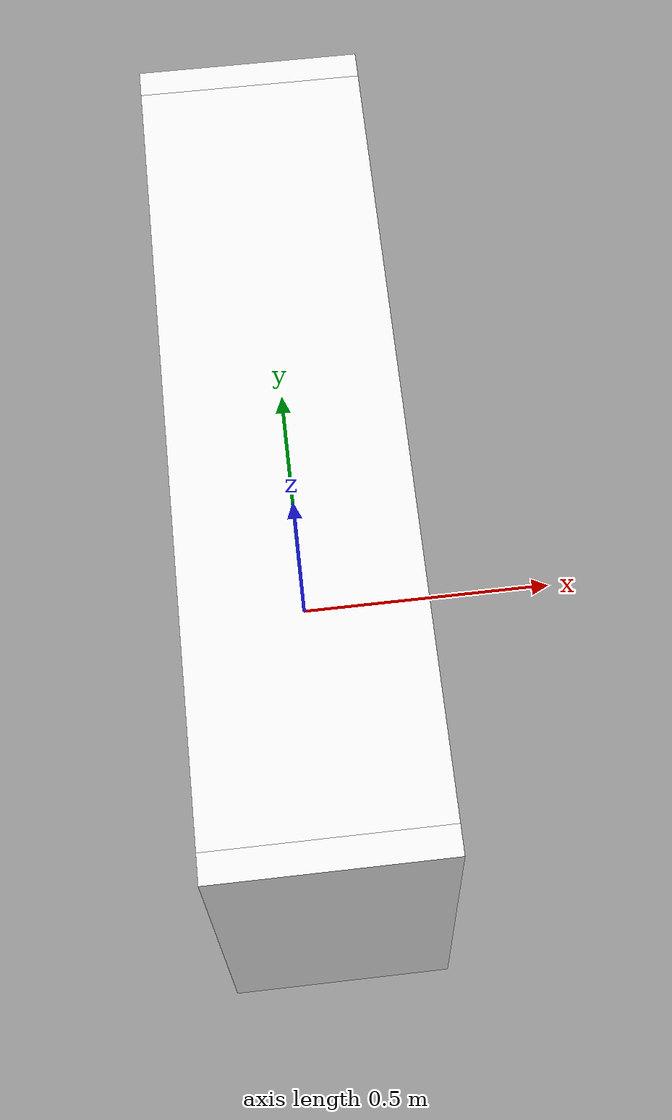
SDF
<?xml version="1.0"?>
<sdf version='1.6'>
  <model name='bookcase'>
    <link name='dummy_link'>
      <pose frame=''>0 0 0 0 -0 0</pose>
      <inertial>
        <pose frame=''>0 0 0.335152 0 -0 0</pose>
        <mass>33</mass>
        <inertia>
          <ixx>7.54617</ixx>
          <ixy>0</ixy>
          <ixz>0</ixz>
          <iyy>2.12412</iyy>
          <iyz>1.60768e-16</iyz>
          <izz>5.42205</izz>
        </inertia>
      </inertial>
      <collision name='dummy_link_fixed_joint_lump__bookcase_bottom_link_collision_1'>
        <pose frame=''>0 0 0.025 0 -0 0</pose>
        <geometry>
          <box>
            <size>0.39 1.39 0.05</size>
          </box>
        </geometry>
        <surface>
          <contact>
            <ode/>
          </contact>
          <friction>
            <ode/>
          </friction>
        </surface>
      </collision>
      <collision name='dummy_link_fixed_joint_lump__separation_4_link_collision_2'>
        <pose frame=''>0 -0.345 0.21875 0 -0 0</pose>
        <geometry>
          <box>
            <size>0.39 0.015 0.33</size>
          </box>
        </geometry>
      </collision>
      <collision name='dummy_link_fixed_joint_lump__separation_5_link_collision_3'>
        <pose frame=''>0 0 0.21875 0 -0 0</pose>
        <geometry>
          <box>
            <size>0.39 0.015 0.33</size>
          </box>
        </geometry>
      </collision>
      <collision name='dummy_link_fixed_joint_lump__separation_6_link_collision_4'>
        <pose frame=''>0 0.345 0.21875 0 -0 0</pose>
        <geometry>
          <box>
            <size>0.39 0.015 0.33</size>
          </box>
        </geometry>
      </collision>
      <collision name='dummy_link_fixed_joint_lump__bookcase_left_collision_5'>
        <pose frame=''>0 -0.72 0.395 0 -0 0</pose>
        <geometry>
          <box>
            <size>0.39 0.05 0.79</size>
          </box>
        </geometry>
        <surface>
          <contact>
            <ode/>
          </contact>
          <friction>
            <ode/>
          </friction>
        </surface>
      </collision>
      <collision name='dummy_link_fixed_joint_lump__bookcase_middle_collision_6'>
        <pose frame=''>0 0 0.395 0 -0 0</pose>
        <geometry>
          <box>
            <size>0.39 1.39 0.015</size>
          </box>
        </geometry>
        <surface>
          <contact>
            <ode/>
          </contact>
          <friction>
            <ode/>
          </friction>
        </surface>
      </collision>
      <collision name='dummy_link_fixed_joint_lump__bookcase_right_collision_7'>
        <pose frame=''>0 0.72 0.395 0 -0 0</pose>
        <geometry>
          <box>
            <size>0.39 0.05 0.79</size>
          </box>
        </geometry>
        <surface>
          <contact>
            <ode/>
          </contact>
          <friction>
            <ode/>
          </friction>
        </surface>
      </collision>
      <collision name='dummy_link_fixed_joint_lump__bookcase_top_link_collision_8'>
        <pose frame=''>0 0 0.765 0 -0 0</pose>
        <geometry>
          <box>
            <size>0.39 1.39 0.05</size>
          </box>
        </geometry>
        <surface>
          <contact>
            <ode/>
          </contact>
          <friction>
            <ode/>
          </friction>
        </surface>
      </collision>
      <collision name='dummy_link_fixed_joint_lump__separation_1_link_collision_9'>
        <pose frame=''>0 -0.345 0.57125 0 -0 0</pose>
        <geometry>
          <box>
            <size>0.39 0.015 0.33</size>
          </box>
        </geometry>
      </collision>
      <collision name='dummy_link_fixed_joint_lump__separation_2_link_collision_10'>
        <pose frame=''>0 0 0.57125 0 -0 0</pose>
        <geometry>
          <box>
            <size>0.39 0.015 0.33</size>
          </box>
        </geometry>
      </collision>
      <collision name='dummy_link_fixed_joint_lump__separation_3_link_collision_11'>
        <pose frame=''>0 0.345 0.57125 0 -0 0</pose>
        <geometry>
          <box>
            <size>0.39 0.015 0.33</size>
          </box>
        </geometry>
      </collision>
      <visual name='dummy_link_fixed_joint_lump__bookcase_bottom_link_visual_1'>
        <pose frame=''>0 0 0.025 0 -0 0</pose>
        <geometry>
          <box>
            <size>0.39 1.39 0.05</size>
          </box>
        </geometry>
        <material>
          <script>
            <name>Gazebo/White</name>
            <uri>file://media/materials/scripts/gazebo.material</uri>
          </script>
        </material>
      </visual>
      <visual name='dummy_link_fixed_joint_lump__separation_4_link_visual_2'>
        <pose frame=''>0 -0.345 0.21875 0 -0 0</pose>
        <geometry>
          <box>
            <size>0.39 0.015 0.3375</size>
          </box>
        </geometry>
      </visual>
      <visual name='dummy_link_fixed_joint_lump__separation_5_link_visual_3'>
        <pose frame=''>0 0 0.21875 0 -0 0</pose>
        <geometry>
          <box>
            <size>0.39 0.015 0.3375</size>
          </box>
        </geometry>
      </visual>
      <visual name='dummy_link_fixed_joint_lump__separation_6_link_visual_4'>
        <pose frame=''>0 0.345 0.21875 0 -0 0</pose>
        <geometry>
          <box>
            <size>0.39 0.015 0.3375</size>
          </box>
        </geometry>
      </visual>
      <visual name='dummy_link_fixed_joint_lump__bookcase_left_visual_5'>
        <pose frame=''>0 -0.72 0.395 0 -0 0</pose>
        <geometry>
          <box>
            <size>0.39 0.05 0.79</size>
          </box>
        </geometry>
        <material>
          <script>
            <name>Gazebo/White</name>
            <uri>file://media/materials/scripts/gazebo.material</uri>
          </script>
        </material>
      </visual>
      <visual name='dummy_link_fixed_joint_lump__bookcase_middle_visual_6'>
        <pose frame=''>0 0 0.395 0 -0 0</pose>
        <geometry>
          <box>
            <size>0.39 1.39 0.015</size>
          </box>
        </geometry>
        <material>
          <script>
            <name>Gazebo/White</name>
            <uri>file://media/materials/scripts/gazebo.material</uri>
          </script>
        </material>
      </visual>
      <visual name='dummy_link_fixed_joint_lump__bookcase_right_visual_7'>
        <pose frame=''>0 0.72 0.395 0 -0 0</pose>
        <geometry>
          <box>
            <size>0.39 0.05 0.79</size>
          </box>
        </geometry>
        <material>
          <script>
            <name>Gazebo/White</name>
            <uri>file://media/materials/scripts/gazebo.material</uri>
          </script>
        </material>
      </visual>
      <visual name='dummy_link_fixed_joint_lump__bookcase_top_link_visual_8'>
        <pose frame=''>0 0 0.765 0 -0 0</pose>
        <geometry>
          <box>
            <size>0.39 1.39 0.05</size>
          </box>
        </geometry>
        <material>
          <script>
            <name>Gazebo/White</name>
            <uri>file://media/materials/scripts/gazebo.material</uri>
          </script>
        </material>
      </visual>
      <visual name='dummy_link_fixed_joint_lump__separation_1_link_visual_9'>
        <pose frame=''>0 -0.345 0.57125 0 -0 0</pose>
        <geometry>
          <box>
            <size>0.39 0.015 0.3375</size>
          </box>
        </geometry>
      </visual>
      <visual name='dummy_link_fixed_joint_lump__separation_2_link_visual_10'>
        <pose frame=''>0 0 0.57125 0 -0 0</pose>
        <geometry>
          <box>
            <size>0.39 0.015 0.3375</size>
          </box>
        </geometry>
      </visual>
      <visual name='dummy_link_fixed_joint_lump__separation_3_link_visual_11'>
        <pose frame=''>0 0.345 0.57125 0 -0 0</pose>
        <geometry>
          <box>
            <size>0.39 0.015 0.3375</size>
          </box>
        </geometry>
      </visual>
      <velocity_decay/>
      <velocity_decay/>
      <velocity_decay/>
      <velocity_decay/>
      <gravity>1</gravity>
      <velocity_decay/>
      <self_collide>0</self_collide>
    </link>
  </model>
</sdf>
